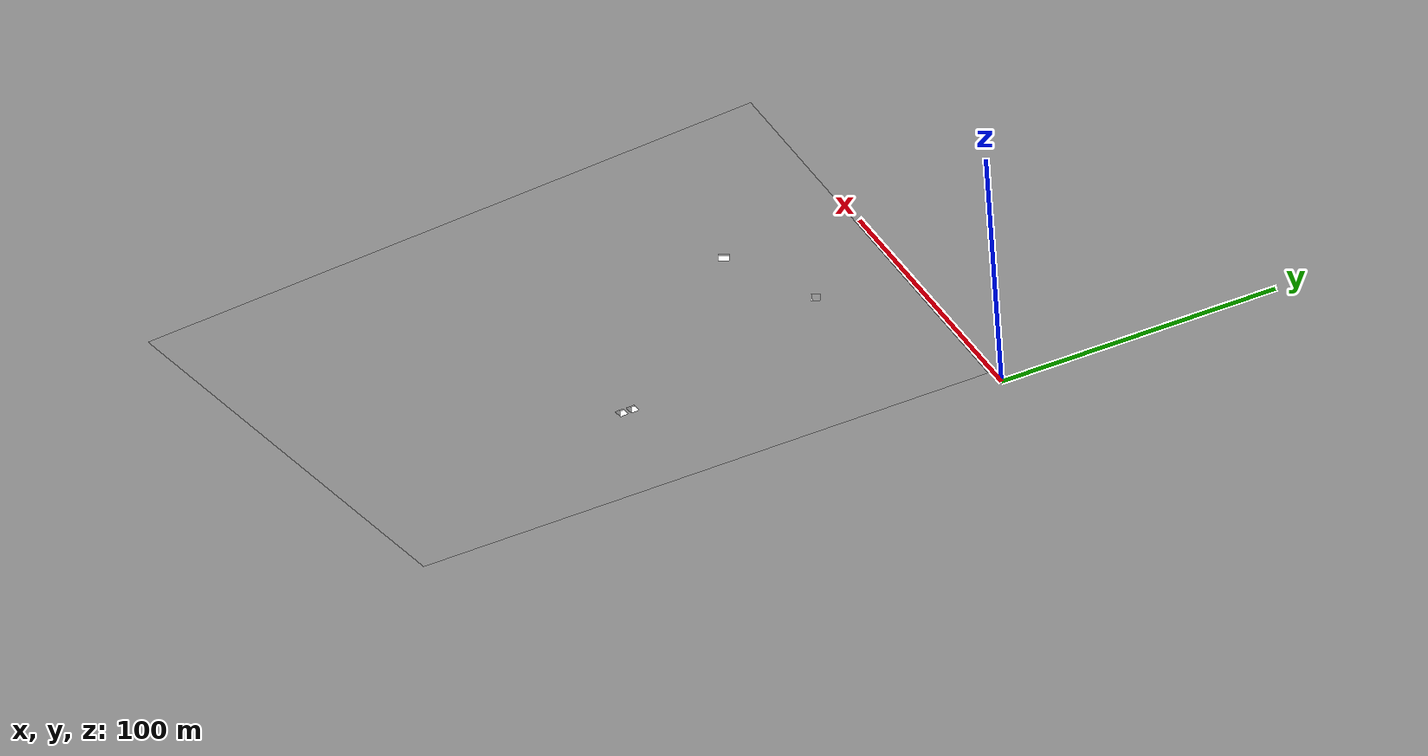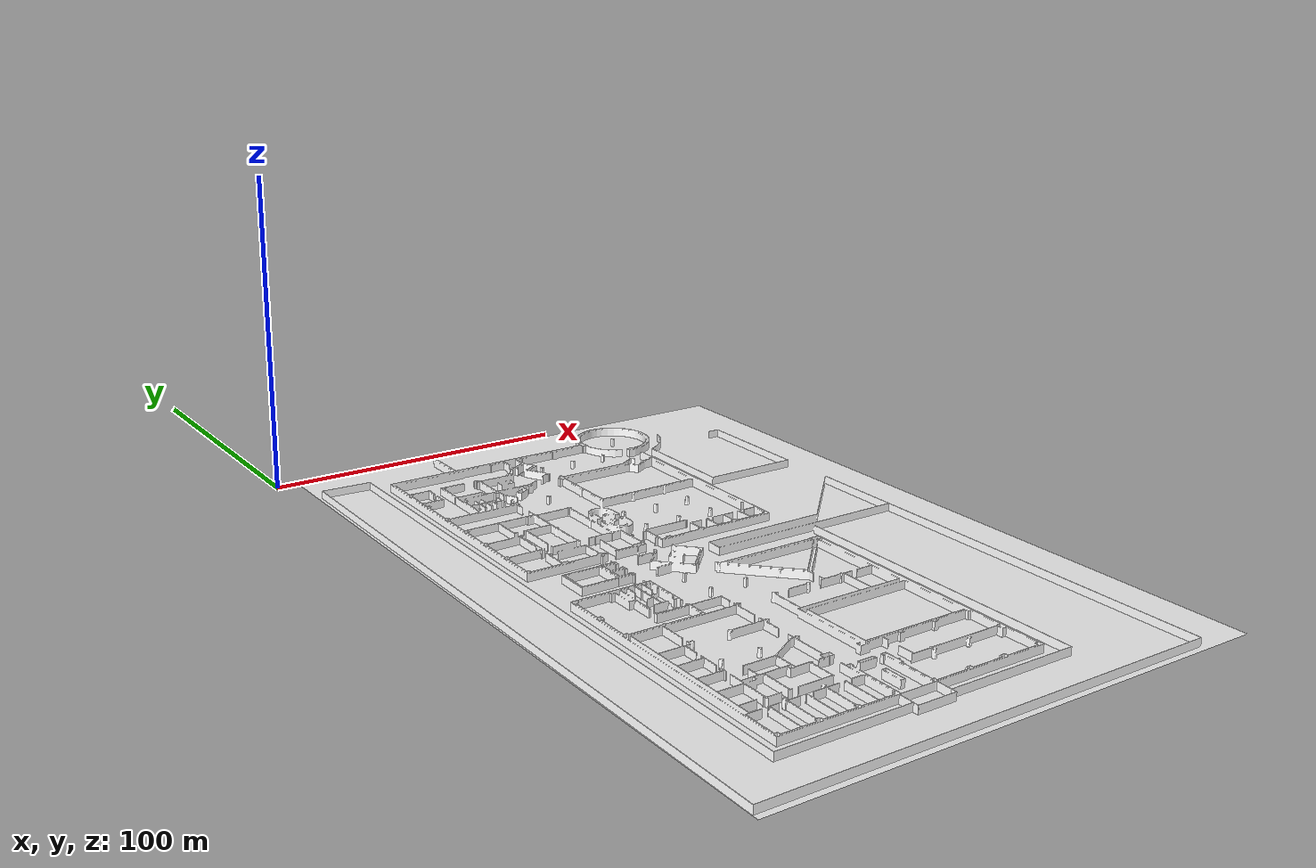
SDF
<?xml version='1.0' encoding='utf-8'?>
<sdf version="1.7">
  <model name="library_L0">
    <static>true</static>
    <link name="floor_1">
      <visual name="visual">
        <geometry>
          <mesh>
            <uri>model://library_L0/meshes/floor_1.obj</uri>
          </mesh>
        </geometry>
        <material>
          <diffuse>1.0 1.0 1.0</diffuse>
          <specular>0.1 0.1 0.1</specular>
          <pbr>
            <metal>
              <metalness>0.0</metalness>
              <albedo_map>model://library_L0/meshes/blue_linoleum.png</albedo_map>
            </metal>
          </pbr>
          <script>
            <uri>model://library_L0/meshes/</uri>
            <name>floor_1_Diffuse</name>
          </script>
        </material>
      </visual>
      <collision name="collision">
        <geometry>
          <mesh>
            <uri>model://library_L0/meshes/floor_1.obj</uri>
          </mesh>
        </geometry>
        <surface>
          <contact>
            <collide_bitmask>0x01</collide_bitmask>
          </contact>
        </surface>
      </collision>
    </link>
    <link name="wall_1">
      <visual name="wall_1">
        <geometry>
          <mesh>
            <uri>model://library_L0/meshes/wall_1.obj</uri>
          </mesh>
        </geometry>
        <transparency>0.0</transparency>
        <material>
          <diffuse>1.0 1.0 1.0</diffuse>
          <specular>0.1 0.1 0.1</specular>
          <pbr>
            <metal>
              <metalness>0.0</metalness>
              <albedo_map>model://library_L0/meshes/default.png</albedo_map>
            </metal>
          </pbr>
          <script>
            <uri>model://library_L0/meshes/</uri>
            <name>wall_1_Diffuse</name>
          </script>
        </material>
      </visual>
      <collision name="collision">
        <geometry>
          <mesh>
            <uri>model://library_L0/meshes/wall_1.obj</uri>
          </mesh>
        </geometry>
        <surface>
          <contact>
            <collide_bitmask>0x01</collide_bitmask>
          </contact>
        </surface>
      </collision>
      <pose>7.027715187092302 -233.76655723102118 0 0 0 0</pose>
    </link>
    <link name="wall_2">
      <visual name="wall_2">
        <geometry>
          <mesh>
            <uri>model://library_L0/meshes/wall_2.obj</uri>
          </mesh>
        </geometry>
        <transparency>0.0</transparency>
        <material>
          <diffuse>1.0 1.0 1.0</diffuse>
          <specular>0.1 0.1 0.1</specular>
          <pbr>
            <metal>
              <metalness>0.0</metalness>
              <albedo_map>model://library_L0/meshes/default.png</albedo_map>
            </metal>
          </pbr>
          <script>
            <uri>model://library_L0/meshes/</uri>
            <name>wall_2_Diffuse</name>
          </script>
        </material>
      </visual>
      <collision name="collision">
        <geometry>
          <mesh>
            <uri>model://library_L0/meshes/wall_2.obj</uri>
          </mesh>
        </geometry>
        <surface>
          <contact>
            <collide_bitmask>0x01</collide_bitmask>
          </contact>
        </surface>
      </collision>
      <pose>65.19363701449794 -221.13476821192052 0 0 0 0</pose>
    </link>
    <link name="wall_3">
      <visual name="wall_3">
        <geometry>
          <mesh>
            <uri>model://library_L0/meshes/wall_3.obj</uri>
          </mesh>
        </geometry>
        <transparency>0.0</transparency>
        <material>
          <diffuse>1.0 1.0 1.0</diffuse>
          <specular>0.1 0.1 0.1</specular>
          <pbr>
            <metal>
              <metalness>0.0</metalness>
              <albedo_map>model://library_L0/meshes/default.png</albedo_map>
            </metal>
          </pbr>
          <script>
            <uri>model://library_L0/meshes/</uri>
            <name>wall_3_Diffuse</name>
          </script>
        </material>
      </visual>
      <collision name="collision">
        <geometry>
          <mesh>
            <uri>model://library_L0/meshes/wall_3.obj</uri>
          </mesh>
        </geometry>
        <surface>
          <contact>
            <collide_bitmask>0x01</collide_bitmask>
          </contact>
        </surface>
      </collision>
      <pose>28.732806380418186 -214.80963723238418 0 0 0 0</pose>
    </link>
    <link name="wall_4">
      <visual name="wall_4">
        <geometry>
          <mesh>
            <uri>model://library_L0/meshes/wall_4.obj</uri>
          </mesh>
        </geometry>
        <transparency>0.0</transparency>
        <material>
          <diffuse>1.0 1.0 1.0</diffuse>
          <specular>0.1 0.1 0.1</specular>
          <pbr>
            <metal>
              <metalness>0.0</metalness>
              <albedo_map>model://library_L0/meshes/default.png</albedo_map>
            </metal>
          </pbr>
          <script>
            <uri>model://library_L0/meshes/</uri>
            <name>wall_4_Diffuse</name>
          </script>
        </material>
      </visual>
      <collision name="collision">
        <geometry>
          <mesh>
            <uri>model://library_L0/meshes/wall_4.obj</uri>
          </mesh>
        </geometry>
        <surface>
          <contact>
            <collide_bitmask>0x01</collide_bitmask>
          </contact>
        </surface>
      </collision>
      <pose>65.19353056970508 -221.13487465671335 0 0 0 0</pose>
    </link>
    <link name="wall_5">
      <visual name="wall_5">
        <geometry>
          <mesh>
            <uri>model://library_L0/meshes/wall_5.obj</uri>
          </mesh>
        </geometry>
        <transparency>0.0</transparency>
        <material>
          <diffuse>1.0 1.0 1.0</diffuse>
          <specular>0.1 0.1 0.1</specular>
          <pbr>
            <metal>
              <metalness>0.0</metalness>
              <albedo_map>model://library_L0/meshes/default.png</albedo_map>
            </metal>
          </pbr>
          <script>
            <uri>model://library_L0/meshes/</uri>
            <name>wall_5_Diffuse</name>
          </script>
        </material>
      </visual>
      <collision name="collision">
        <geometry>
          <mesh>
            <uri>model://library_L0/meshes/wall_5.obj</uri>
          </mesh>
        </geometry>
        <surface>
          <contact>
            <collide_bitmask>0x01</collide_bitmask>
          </contact>
        </surface>
      </collision>
      <pose>36.207934314067224 -123.59421352914022 0 0 0 0</pose>
    </link>
    <link name="wall_6">
      <visual name="wall_6">
        <geometry>
          <mesh>
            <uri>model://library_L0/meshes/wall_6.obj</uri>
          </mesh>
        </geometry>
        <transparency>0.0</transparency>
        <material>
          <diffuse>1.0 1.0 1.0</diffuse>
          <specular>0.1 0.1 0.1</specular>
          <pbr>
            <metal>
              <metalness>0.0</metalness>
              <albedo_map>model://library_L0/meshes/default.png</albedo_map>
            </metal>
          </pbr>
          <script>
            <uri>model://library_L0/meshes/</uri>
            <name>wall_6_Diffuse</name>
          </script>
        </material>
      </visual>
      <collision name="collision">
        <geometry>
          <mesh>
            <uri>model://library_L0/meshes/wall_6.obj</uri>
          </mesh>
        </geometry>
        <surface>
          <contact>
            <collide_bitmask>0x01</collide_bitmask>
          </contact>
        </surface>
      </collision>
      <pose>58.656507425087824 -52.025110616795125 0 0 0 0</pose>
    </link>
  </model>
</sdf>
